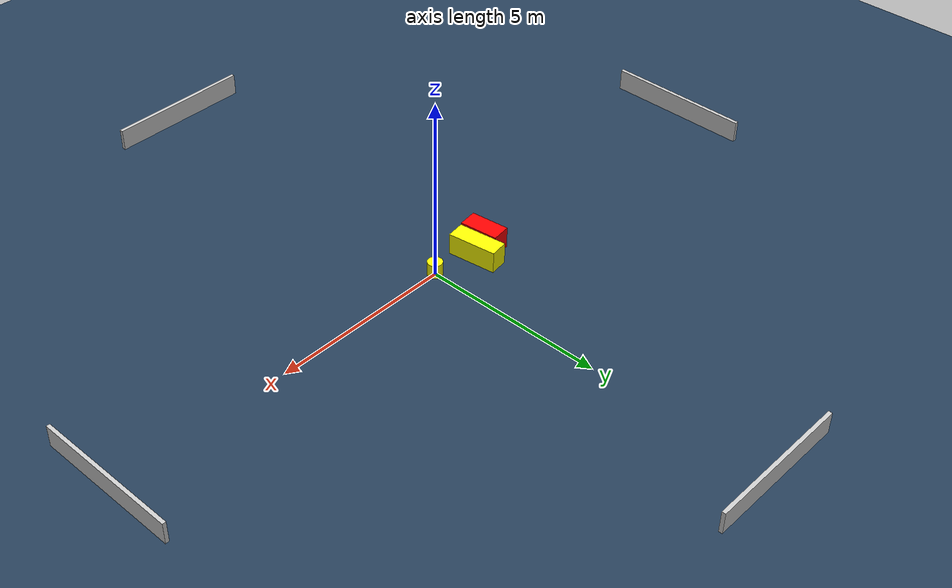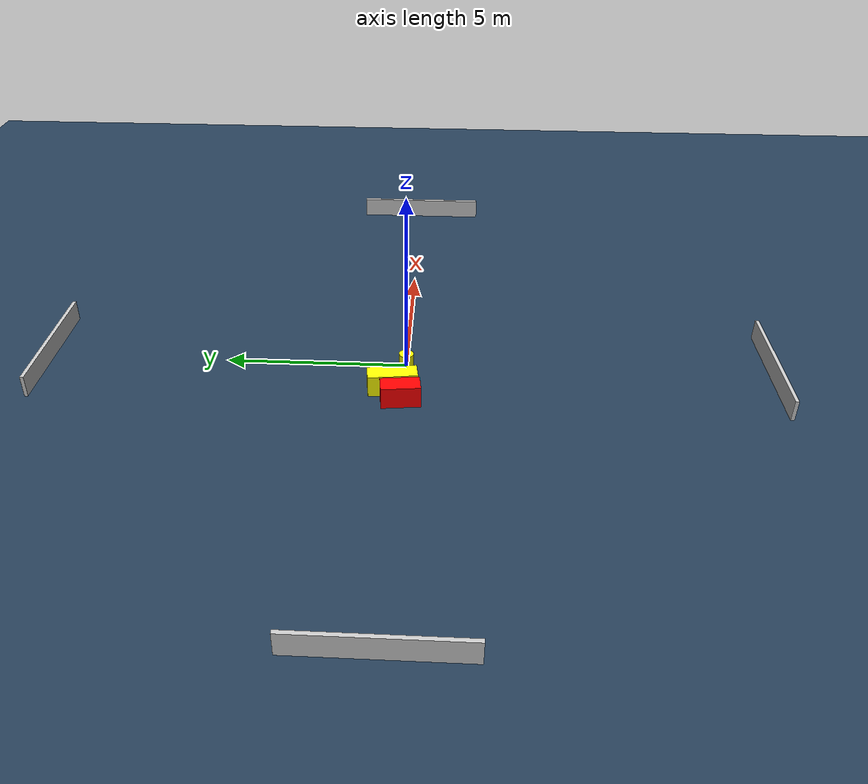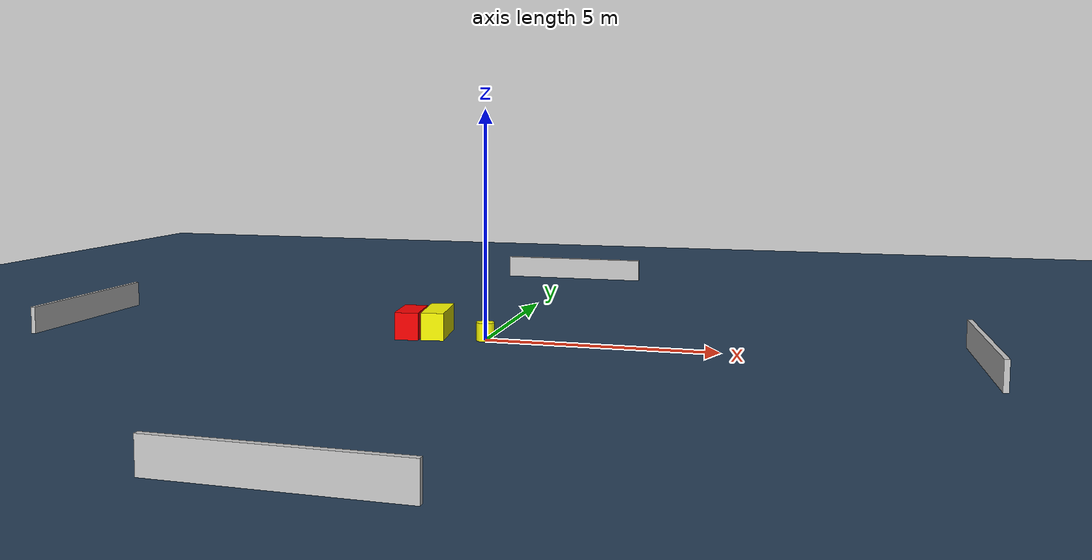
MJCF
<?xml version="1.0" ?>
<mujoco model="generated_environment">
  <option timestep="0.01" integrator="RK4" cone="elliptic"/>
  <default>
    <geom density="1"/>
  </default>
  <asset>
    <texture builtin="gradient" height="3072" name="skybox" rgb1="0.3 0.5 0.7" rgb2="0 0 0" type="skybox" width="512"/>
    <texture builtin="checker" height="300" name="groundplane" rgb1="0.2 0.3 0.4" rgb2="0.1 0.2 0.3" type="2d" width="300"/>
    <material name="groundplane" reflectance="0.2" texrepeat="5 5" texture="groundplane"/>
  </asset>
  <worldbody>
    <light dir="0 0 -1" directional="true" pos="0 0 1.5"/>
    <geom condim="3" friction="0.5 0.005 0.001" material="groundplane" name="floor" pos="0 0 0" size="0 0 0.05" type="plane"/>
    <body name="walls">
      <geom name="wall_1" condim="4" pos="-10.0 0.0 0.3" rgba="0.800000011920929 0.800000011920929 0.800000011920929 1.0" size="0.05 2.0 0.3" type="box"/>
      <geom name="wall_2" condim="4" pos="10.0 0.0 0.3" rgba="0.800000011920929 0.800000011920929 0.800000011920929 1.0" size="0.05 2.0 0.3" type="box"/>
      <geom name="wall_3" condim="4" pos="0.0 -10.0 0.3" rgba="0.800000011920929 0.800000011920929 0.800000011920929 1.0" size="2.0 0.05 0.3" type="box"/>
      <geom name="wall_4" condim="4" pos="0.0 10.0 0.3" rgba="0.800000011920929 0.800000011920929 0.800000011920929 1.0" size="2.0 0.05 0.3" type="box"/>
    </body>
    <body name="robot">
      <joint name="joint_x" type="slide" pos="0 0 0" axis="1 0 0"/>
      <joint name="joint_y" type="slide" pos="0 0 0" axis="0 1 0"/>
      <geom name="robot" type="cylinder" pos="0.0 0.0 0.2" size="0.2 0.2 0.0" mass="5.0" friction="1.0 0.005 0.0001" condim="4" rgba="1.0 1.0 0.0 1.0"/>
    </body>
    <body name="obstacle_1_movable">
      <geom name="obstacle_1_movable" condim="4" pos="-1.1935519623290434 0.3122472944920092 0.3" euler="0 0 187.8241115569188" friction="0.0 0.005 0.001" rgba="1.0 1.0 0.0 1.0" size="0.2521487958945944 0.6678205757315947 0.3" type="box" mass="0.1"/>
      <joint type="free"/>
    </body>
    <body name="obstacle_2_static">
      <geom name="obstacle_2_static" condim="4" pos="-1.7273959479382224 0.06915821706552644 0.3" euler="0 0 186.82524060415867" friction="0.0 0.005 0.001" rgba="1.0 0.0 0.0 1.0" size="0.26197730761607424 0.5255866505060252 0.3" type="box"/>
    </body>
  </worldbody>
  <actuator>
    <motor name="actuator_x" joint="joint_x" gear="1" ctrlrange="-1 1"/>
    <motor name="actuator_y" joint="joint_y" gear="1" ctrlrange="-1 1"/>
  </actuator>
</mujoco>
